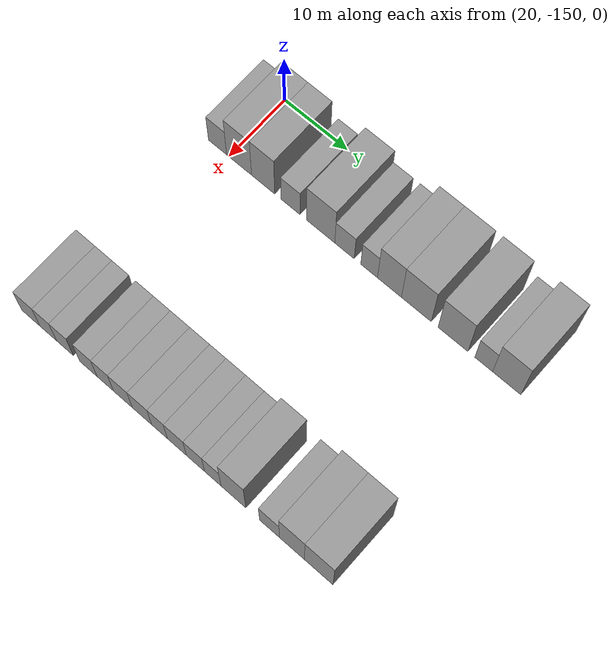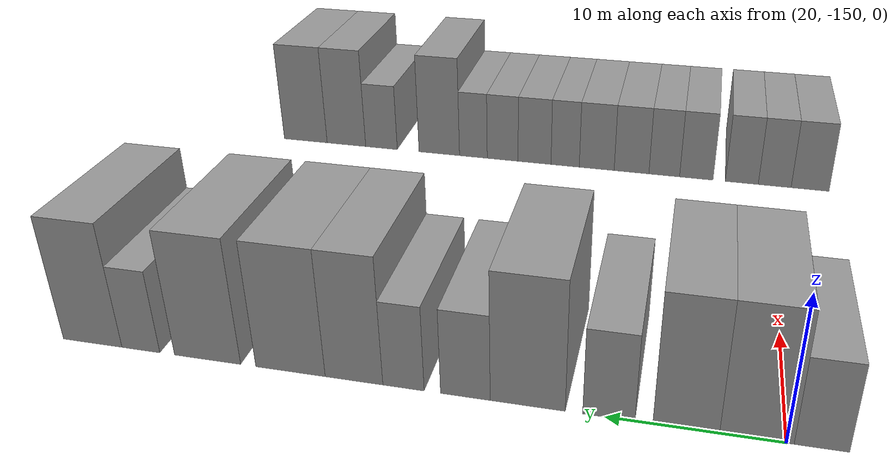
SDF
<sdf version="1.6">
 <world name="default">
  <model name="building_12">
   <static>1</static>
   <pose>25.0000 -151.8430 0 0.000000 0.000000 0.000000</pose>
   <link name="link">
    <pose>0 0 3.00 0 0 0</pose>
    <collision name="collision"><geometry><box><size>10.0000 2.9130 6.0000</size></box></geometry></collision>
    <visual name="visual">
     <cast_shadows>0</cast_shadows>
     <geometry><box><size>10.0000 2.9130 6.0000</size></box></geometry>
     <material>
      <script>
       <uri>model://grey_wall/materials/scripts</uri>
       <uri>model://grey_wall/materials/textures</uri>
       <name>vrc/grey_wall</name>
      </script>
     </material>
    </visual>
   </link>
  </model>
  <model name="building_13">
   <static>1</static>
   <pose>25.0000 -148.3848 0 0.000000 0.000000 0.000000</pose>
   <link name="link">
    <pose>0 0 4.50 0 0 0</pose>
    <collision name="collision"><geometry><box><size>10.0000 4.0035 9.0000</size></box></geometry></collision>
    <visual name="visual">
     <cast_shadows>0</cast_shadows>
     <geometry><box><size>10.0000 4.0035 9.0000</size></box></geometry>
     <material>
      <script>
       <uri>model://grey_wall/materials/scripts</uri>
       <uri>model://grey_wall/materials/textures</uri>
       <name>vrc/grey_wall</name>
      </script>
     </material>
    </visual>
   </link>
  </model>
  <model name="building_14">
   <static>1</static>
   <pose>25.0000 -144.5421 0 0.000000 0.000000 0.000000</pose>
   <link name="link">
    <pose>0 0 4.50 0 0 0</pose>
    <collision name="collision"><geometry><box><size>10.0000 3.6819 9.0000</size></box></geometry></collision>
    <visual name="visual">
     <cast_shadows>0</cast_shadows>
     <geometry><box><size>10.0000 3.6819 9.0000</size></box></geometry>
     <material>
      <script>
       <uri>model://grey_wall/materials/scripts</uri>
       <uri>model://grey_wall/materials/textures</uri>
       <name>vrc/grey_wall</name>
      </script>
     </material>
    </visual>
   </link>
  </model>
  <model name="building_15">
   <static>1</static>
   <pose>25.0000 -140.2156 0 0.000000 0.000000 0.000000</pose>
   <link name="link">
    <pose>0 0 3.00 0 0 0</pose>
    <collision name="collision"><geometry><box><size>10.0000 2.9711 6.0000</size></box></geometry></collision>
    <visual name="visual">
     <cast_shadows>0</cast_shadows>
     <geometry><box><size>10.0000 2.9711 6.0000</size></box></geometry>
     <material>
      <script>
       <uri>model://grey_wall/materials/scripts</uri>
       <uri>model://grey_wall/materials/textures</uri>
       <name>vrc/grey_wall</name>
      </script>
     </material>
    </visual>
   </link>
  </model>
  <model name="building_16">
   <static>1</static>
   <pose>25.0000 -135.5298 0 0.000000 0.000000 0.000000</pose>
   <link name="link">
    <pose>0 0 4.50 0 0 0</pose>
    <collision name="collision"><geometry><box><size>10.0000 4.4004 9.0000</size></box></geometry></collision>
    <visual name="visual">
     <cast_shadows>0</cast_shadows>
     <geometry><box><size>10.0000 4.4004 9.0000</size></box></geometry>
     <material>
      <script>
       <uri>model://grey_wall/materials/scripts</uri>
       <uri>model://grey_wall/materials/textures</uri>
       <name>vrc/grey_wall</name>
      </script>
     </material>
    </visual>
   </link>
  </model>
  <model name="building_17">
   <static>1</static>
   <pose>25.0000 -131.8402 0 0.000000 0.000000 0.000000</pose>
   <link name="link">
    <pose>0 0 3.00 0 0 0</pose>
    <collision name="collision"><geometry><box><size>10.0000 2.9789 6.0000</size></box></geometry></collision>
    <visual name="visual">
     <cast_shadows>0</cast_shadows>
     <geometry><box><size>10.0000 2.9789 6.0000</size></box></geometry>
     <material>
      <script>
       <uri>model://grey_wall/materials/scripts</uri>
       <uri>model://grey_wall/materials/textures</uri>
       <name>vrc/grey_wall</name>
      </script>
     </material>
    </visual>
   </link>
  </model>
  <model name="building_18">
   <static>1</static>
   <pose>25.0000 -128.0806 0 0.000000 0.000000 0.000000</pose>
   <link name="link">
    <pose>0 0 3.00 0 0 0</pose>
    <collision name="collision"><geometry><box><size>10.0000 2.5402 6.0000</size></box></geometry></collision>
    <visual name="visual">
     <cast_shadows>0</cast_shadows>
     <geometry><box><size>10.0000 2.5402 6.0000</size></box></geometry>
     <material>
      <script>
       <uri>model://grey_wall/materials/scripts</uri>
       <uri>model://grey_wall/materials/textures</uri>
       <name>vrc/grey_wall</name>
      </script>
     </material>
    </visual>
   </link>
  </model>
  <model name="building_19">
   <static>1</static>
   <pose>25.0000 -125.0010 0 0.000000 0.000000 0.000000</pose>
   <link name="link">
    <pose>0 0 4.50 0 0 0</pose>
    <collision name="collision"><geometry><box><size>10.0000 3.6189 9.0000</size></box></geometry></collision>
    <visual name="visual">
     <cast_shadows>0</cast_shadows>
     <geometry><box><size>10.0000 3.6189 9.0000</size></box></geometry>
     <material>
      <script>
       <uri>model://grey_wall/materials/scripts</uri>
       <uri>model://grey_wall/materials/textures</uri>
       <name>vrc/grey_wall</name>
      </script>
     </material>
    </visual>
   </link>
  </model>
  <model name="building_20">
   <static>1</static>
   <pose>25.0000 -120.9565 0 0.000000 0.000000 0.000000</pose>
   <link name="link">
    <pose>0 0 4.50 0 0 0</pose>
    <collision name="collision"><geometry><box><size>10.0000 4.4701 9.0000</size></box></geometry></collision>
    <visual name="visual">
     <cast_shadows>0</cast_shadows>
     <geometry><box><size>10.0000 4.4701 9.0000</size></box></geometry>
     <material>
      <script>
       <uri>model://grey_wall/materials/scripts</uri>
       <uri>model://grey_wall/materials/textures</uri>
       <name>vrc/grey_wall</name>
      </script>
     </material>
    </visual>
   </link>
  </model>
  <model name="building_21">
   <static>1</static>
   <pose>25.0000 -115.5185 0 0.000000 0.000000 0.000000</pose>
   <link name="link">
    <pose>0 0 4.50 0 0 0</pose>
    <collision name="collision"><geometry><box><size>10.0000 4.4060 9.0000</size></box></geometry></collision>
    <visual name="visual">
     <cast_shadows>0</cast_shadows>
     <geometry><box><size>10.0000 4.4060 9.0000</size></box></geometry>
     <material>
      <script>
       <uri>model://grey_wall/materials/scripts</uri>
       <uri>model://grey_wall/materials/textures</uri>
       <name>vrc/grey_wall</name>
      </script>
     </material>
    </visual>
   </link>
  </model>
  <model name="building_22">
   <static>1</static>
   <pose>25.0000 -111.0188 0 0.000000 0.000000 0.000000</pose>
   <link name="link">
    <pose>0 0 3.00 0 0 0</pose>
    <collision name="collision"><geometry><box><size>10.0000 2.5934 6.0000</size></box></geometry></collision>
    <visual name="visual">
     <cast_shadows>0</cast_shadows>
     <geometry><box><size>10.0000 2.5934 6.0000</size></box></geometry>
     <material>
      <script>
       <uri>model://grey_wall/materials/scripts</uri>
       <uri>model://grey_wall/materials/textures</uri>
       <name>vrc/grey_wall</name>
      </script>
     </material>
    </visual>
   </link>
  </model>
  <model name="building_23">
   <static>1</static>
   <pose>25.0000 -107.6772 0 0.000000 0.000000 0.000000</pose>
   <link name="link">
    <pose>0 0 4.50 0 0 0</pose>
    <collision name="collision"><geometry><box><size>10.0000 4.0898 9.0000</size></box></geometry></collision>
    <visual name="visual">
     <cast_shadows>0</cast_shadows>
     <geometry><box><size>10.0000 4.0898 9.0000</size></box></geometry>
     <material>
      <script>
       <uri>model://grey_wall/materials/scripts</uri>
       <uri>model://grey_wall/materials/textures</uri>
       <name>vrc/grey_wall</name>
      </script>
     </material>
    </visual>
   </link>
  </model>
  <model name="building_115">
   <static>1</static>
   <pose>55.0000 -153.1826 0 0.000000 0.000000 0.000000</pose>
   <link name="link">
    <pose>0 0 3.00 0 0 0</pose>
    <collision name="collision"><geometry><box><size>10.0000 2.9797 6.0000</size></box></geometry></collision>
    <visual name="visual">
     <cast_shadows>0</cast_shadows>
     <geometry><box><size>10.0000 2.9797 6.0000</size></box></geometry>
     <material>
      <script>
       <uri>model://grey_wall/materials/scripts</uri>
       <uri>model://grey_wall/materials/textures</uri>
       <name>vrc/grey_wall</name>
      </script>
     </material>
    </visual>
   </link>
  </model>
  <model name="building_116">
   <static>1</static>
   <pose>55.0000 -150.3841 0 0.000000 0.000000 0.000000</pose>
   <link name="link">
    <pose>0 0 3.00 0 0 0</pose>
    <collision name="collision"><geometry><box><size>10.0000 2.6173 6.0000</size></box></geometry></collision>
    <visual name="visual">
     <cast_shadows>0</cast_shadows>
     <geometry><box><size>10.0000 2.6173 6.0000</size></box></geometry>
     <material>
      <script>
       <uri>model://grey_wall/materials/scripts</uri>
       <uri>model://grey_wall/materials/textures</uri>
       <name>vrc/grey_wall</name>
      </script>
     </material>
    </visual>
   </link>
  </model>
  <model name="building_117">
   <static>1</static>
   <pose>55.0000 -147.7492 0 0.000000 0.000000 0.000000</pose>
   <link name="link">
    <pose>0 0 3.00 0 0 0</pose>
    <collision name="collision"><geometry><box><size>10.0000 2.6527 6.0000</size></box></geometry></collision>
    <visual name="visual">
     <cast_shadows>0</cast_shadows>
     <geometry><box><size>10.0000 2.6527 6.0000</size></box></geometry>
     <material>
      <script>
       <uri>model://grey_wall/materials/scripts</uri>
       <uri>model://grey_wall/materials/textures</uri>
       <name>vrc/grey_wall</name>
      </script>
     </material>
    </visual>
   </link>
  </model>
  <model name="building_118">
   <static>1</static>
   <pose>55.0000 -144.0522 0 0.000000 0.000000 0.000000</pose>
   <link name="link">
    <pose>0 0 3.00 0 0 0</pose>
    <collision name="collision"><geometry><box><size>10.0000 2.7412 6.0000</size></box></geometry></collision>
    <visual name="visual">
     <cast_shadows>0</cast_shadows>
     <geometry><box><size>10.0000 2.7412 6.0000</size></box></geometry>
     <material>
      <script>
       <uri>model://grey_wall/materials/scripts</uri>
       <uri>model://grey_wall/materials/textures</uri>
       <name>vrc/grey_wall</name>
      </script>
     </material>
    </visual>
   </link>
  </model>
  <model name="building_119">
   <static>1</static>
   <pose>55.0000 -141.4076 0 0.000000 0.000000 0.000000</pose>
   <link name="link">
    <pose>0 0 3.00 0 0 0</pose>
    <collision name="collision"><geometry><box><size>10.0000 2.5482 6.0000</size></box></geometry></collision>
    <visual name="visual">
     <cast_shadows>0</cast_shadows>
     <geometry><box><size>10.0000 2.5482 6.0000</size></box></geometry>
     <material>
      <script>
       <uri>model://grey_wall/materials/scripts</uri>
       <uri>model://grey_wall/materials/textures</uri>
       <name>vrc/grey_wall</name>
      </script>
     </material>
    </visual>
   </link>
  </model>
  <model name="building_120">
   <static>1</static>
   <pose>55.0000 -138.6728 0 0.000000 0.000000 0.000000</pose>
   <link name="link">
    <pose>0 0 3.00 0 0 0</pose>
    <collision name="collision"><geometry><box><size>10.0000 2.9214 6.0000</size></box></geometry></collision>
    <visual name="visual">
     <cast_shadows>0</cast_shadows>
     <geometry><box><size>10.0000 2.9214 6.0000</size></box></geometry>
     <material>
      <script>
       <uri>model://grey_wall/materials/scripts</uri>
       <uri>model://grey_wall/materials/textures</uri>
       <name>vrc/grey_wall</name>
      </script>
     </material>
    </visual>
   </link>
  </model>
  <model name="building_121">
   <static>1</static>
   <pose>55.0000 -135.7266 0 0.000000 0.000000 0.000000</pose>
   <link name="link">
    <pose>0 0 3.00 0 0 0</pose>
    <collision name="collision"><geometry><box><size>10.0000 2.9710 6.0000</size></box></geometry></collision>
    <visual name="visual">
     <cast_shadows>0</cast_shadows>
     <geometry><box><size>10.0000 2.9710 6.0000</size></box></geometry>
     <material>
      <script>
       <uri>model://grey_wall/materials/scripts</uri>
       <uri>model://grey_wall/materials/textures</uri>
       <name>vrc/grey_wall</name>
      </script>
     </material>
    </visual>
   </link>
  </model>
  <model name="building_122">
   <static>1</static>
   <pose>55.0000 -133.0238 0 0.000000 0.000000 0.000000</pose>
   <link name="link">
    <pose>0 0 3.00 0 0 0</pose>
    <collision name="collision"><geometry><box><size>10.0000 2.4346 6.0000</size></box></geometry></collision>
    <visual name="visual">
     <cast_shadows>0</cast_shadows>
     <geometry><box><size>10.0000 2.4346 6.0000</size></box></geometry>
     <material>
      <script>
       <uri>model://grey_wall/materials/scripts</uri>
       <uri>model://grey_wall/materials/textures</uri>
       <name>vrc/grey_wall</name>
      </script>
     </material>
    </visual>
   </link>
  </model>
  <model name="building_123">
   <static>1</static>
   <pose>55.0000 -130.3683 0 0.000000 0.000000 0.000000</pose>
   <link name="link">
    <pose>0 0 3.00 0 0 0</pose>
    <collision name="collision"><geometry><box><size>10.0000 2.8764 6.0000</size></box></geometry></collision>
    <visual name="visual">
     <cast_shadows>0</cast_shadows>
     <geometry><box><size>10.0000 2.8764 6.0000</size></box></geometry>
     <material>
      <script>
       <uri>model://grey_wall/materials/scripts</uri>
       <uri>model://grey_wall/materials/textures</uri>
       <name>vrc/grey_wall</name>
      </script>
     </material>
    </visual>
   </link>
  </model>
  <model name="building_124">
   <static>1</static>
   <pose>55.0000 -127.5705 0 0.000000 0.000000 0.000000</pose>
   <link name="link">
    <pose>0 0 3.00 0 0 0</pose>
    <collision name="collision"><geometry><box><size>10.0000 2.7192 6.0000</size></box></geometry></collision>
    <visual name="visual">
     <cast_shadows>0</cast_shadows>
     <geometry><box><size>10.0000 2.7192 6.0000</size></box></geometry>
     <material>
      <script>
       <uri>model://grey_wall/materials/scripts</uri>
       <uri>model://grey_wall/materials/textures</uri>
       <name>vrc/grey_wall</name>
      </script>
     </material>
    </visual>
   </link>
  </model>
  <model name="building_125">
   <static>1</static>
   <pose>55.0000 -124.9729 0 0.000000 0.000000 0.000000</pose>
   <link name="link">
    <pose>0 0 3.00 0 0 0</pose>
    <collision name="collision"><geometry><box><size>10.0000 2.4760 6.0000</size></box></geometry></collision>
    <visual name="visual">
     <cast_shadows>0</cast_shadows>
     <geometry><box><size>10.0000 2.4760 6.0000</size></box></geometry>
     <material>
      <script>
       <uri>model://grey_wall/materials/scripts</uri>
       <uri>model://grey_wall/materials/textures</uri>
       <name>vrc/grey_wall</name>
      </script>
     </material>
    </visual>
   </link>
  </model>
  <model name="building_126">
   <static>1</static>
   <pose>55.0000 -121.9028 0 0.000000 0.000000 0.000000</pose>
   <link name="link">
    <pose>0 0 4.50 0 0 0</pose>
    <collision name="collision"><geometry><box><size>10.0000 3.6641 9.0000</size></box></geometry></collision>
    <visual name="visual">
     <cast_shadows>0</cast_shadows>
     <geometry><box><size>10.0000 3.6641 9.0000</size></box></geometry>
     <material>
      <script>
       <uri>model://grey_wall/materials/scripts</uri>
       <uri>model://grey_wall/materials/textures</uri>
       <name>vrc/grey_wall</name>
      </script>
     </material>
    </visual>
   </link>
  </model>
  <model name="building_127">
   <static>1</static>
   <pose>55.0000 -116.6091 0 0.000000 0.000000 0.000000</pose>
   <link name="link">
    <pose>0 0 3.00 0 0 0</pose>
    <collision name="collision"><geometry><box><size>10.0000 2.9235 6.0000</size></box></geometry></collision>
    <visual name="visual">
     <cast_shadows>0</cast_shadows>
     <geometry><box><size>10.0000 2.9235 6.0000</size></box></geometry>
     <material>
      <script>
       <uri>model://grey_wall/materials/scripts</uri>
       <uri>model://grey_wall/materials/textures</uri>
       <name>vrc/grey_wall</name>
      </script>
     </material>
    </visual>
   </link>
  </model>
  <model name="building_128">
   <static>1</static>
   <pose>55.0000 -113.3360 0 0.000000 0.000000 0.000000</pose>
   <link name="link">
    <pose>0 0 4.50 0 0 0</pose>
    <collision name="collision"><geometry><box><size>10.0000 3.6226 9.0000</size></box></geometry></collision>
    <visual name="visual">
     <cast_shadows>0</cast_shadows>
     <geometry><box><size>10.0000 3.6226 9.0000</size></box></geometry>
     <material>
      <script>
       <uri>model://grey_wall/materials/scripts</uri>
       <uri>model://grey_wall/materials/textures</uri>
       <name>vrc/grey_wall</name>
      </script>
     </material>
    </visual>
   </link>
  </model>
  <model name="building_129">
   <static>1</static>
   <pose>55.0000 -109.4862 0 0.000000 0.000000 0.000000</pose>
   <link name="link">
    <pose>0 0 4.50 0 0 0</pose>
    <collision name="collision"><geometry><box><size>10.0000 4.0770 9.0000</size></box></geometry></collision>
    <visual name="visual">
     <cast_shadows>0</cast_shadows>
     <geometry><box><size>10.0000 4.0770 9.0000</size></box></geometry>
     <material>
      <script>
       <uri>model://grey_wall/materials/scripts</uri>
       <uri>model://grey_wall/materials/textures</uri>
       <name>vrc/grey_wall</name>
      </script>
     </material>
    </visual>
   </link>
  </model>
 </world>
</sdf>
